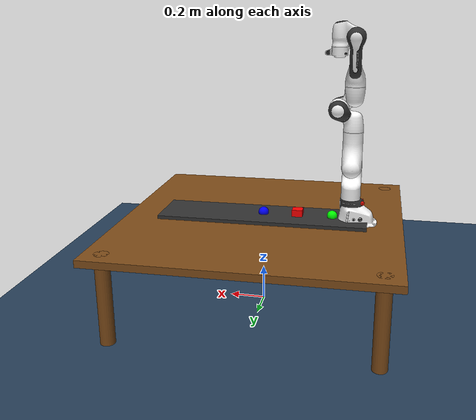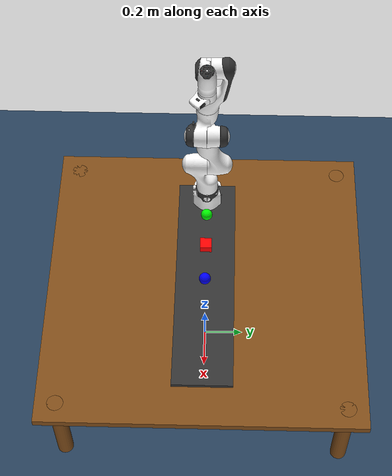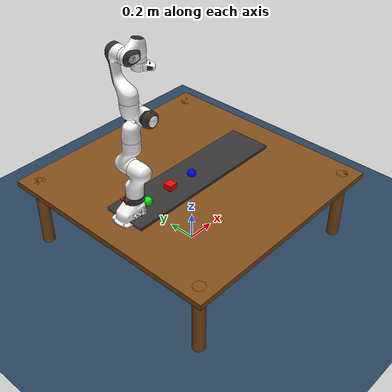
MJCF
<mujoco model="fr3 scene">
  <include file="fr3.xml"/>

  <statistic center="0.2 0 0.4" extent=".8"/>

  <visual>
    <headlight diffuse="0.6 0.6 0.6" ambient="0.3 0.3 0.3" specular="0 0 0"/>
    <rgba haze="0.15 0.25 0.35 1"/>
    <global azimuth="120" elevation="-20"/>
  </visual>

  <asset>
    <texture type="skybox" builtin="gradient" rgb1="0.3 0.5 0.7" rgb2="0 0 0" width="512" height="3072"/>
    <texture type="2d" name="groundplane" builtin="checker" mark="edge" rgb1="0.2 0.3 0.4" rgb2="0.1 0.2 0.3"
      markrgb="0.8 0.8 0.8" width="300" height="300"/>
    <material name="groundplane" texture="groundplane" texuniform="true" texrepeat="5 5" reflectance="0.2"/>
    <material name="table_mat" rgba="0.5 0.3 0.1 1"/>
    <material name="conveyor_mat" rgba="0.2 0.2 0.2 1"/>
    <material name="circle_mat" rgba="0 1 0 1"/>
    <material name="x_mat" rgba="1 0 0 1"/>
    <material name="triangle_mat" rgba="0 0 1 1"/>
  </asset>

  <worldbody>
    <light pos="0 0 1.5" dir="0 0 -1" directional="true"/>
    <geom name="floor" size="0 0 0.05" type="plane" material="groundplane"/>

    <!-- Table -->
    <body name="table" pos="0 0 0">
      <geom name="table_top" type="box" size="0.8 0.8 0.02" pos="0 0 0.50" material="table_mat"/>
      <!-- Optional table legs -->
      <geom name="leg1" type="cylinder" size="0.04 0.25" pos="0.7 0.7 0.27" material="table_mat"/>
      <geom name="leg2" type="cylinder" size="0.04 0.25" pos="-0.7 0.7 0.27" material="table_mat"/>
      <geom name="leg3" type="cylinder" size="0.04 0.25" pos="0.7 -0.7 0.27" material="table_mat"/>
      <geom name="leg4" type="cylinder" size="0.04 0.25" pos="-0.7 -0.7 0.27" material="table_mat"/>

      <!-- Conveyor belt - aligned with table -->
      <body name="conveyor" pos="0 0 0.52">  <!-- Just above table surface -->
        <geom name="belt" type="box" size="0.6 0.15 0.02" material="conveyor_mat"/>
        <joint name="conveyor_joint" type="slide" axis="1 0 0" pos="0 0 0" limited="false"/>

        <!-- Moving blocks - on conveyor surface -->
        <body name="circle_block" pos="-0.4 0 0.03">
          <joint name="circle_joint" type="slide" axis="1 0 0" limited="false"/>
          <geom name="circle_geom" type="sphere" size="0.03" material="circle_mat"/>
        </body>

        <body name="x_block" pos="-0.2 0 0.03">
          <joint name="x_joint" type="slide" axis="1 0 0" limited="false"/>
          <geom name="x_geom" type="box" size="0.03 0.03 0.03" material="x_mat"/>
        </body>

        <body name="triangle_block" pos="0 0 0.03">
          <joint name="triangle_joint" type="slide" axis="1 0 0" limited="false"/>
          <geom name="triangle_geom" type="ellipsoid" size="0.03 0.03 0.03" material="triangle_mat"/>
        </body>
      </body>
    </body>
  </worldbody>

  <actuator>
    <velocity name="conveyor_velocity" joint="conveyor_joint" kv="100" gear="1"/>
  </actuator>
</mujoco>

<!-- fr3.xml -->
<mujoco model="fr3">
  <compiler angle="radian" meshdir="assets"/>

  <option integrator="implicitfast"/>

  <default>
    <default class="fr3">
      <joint armature="0.1" damping="1"/>
      <position inheritrange="1"/>
      <default class="visual">
        <geom type="mesh" group="2" contype="0" conaffinity="0"/>
      </default>
      <default class="collision">
        <geom type="mesh" group="3" mass="0" density="0"/>
      </default>
      <site size="0.001" rgba="0.5 0.5 0.5 0.3" group="4"/>
    </default>
  </default>

  <asset>
    <material name="black" rgba=".2 .2 .2 1"/>
    <material name="white" rgba="1 1 1 1"/>
    <material name="red" rgba="1 0.072272 0.039546 1"/>
    <material name="gray" rgba="0.863156 0.863156 0.863157 1"/>
    <material name="button_green" rgba="0.102241 0.571125 0.102242 1"/>
    <material name="button_red" rgba="0.520996 0.008023 0.013702 1"/>
    <material name="button_blue" rgba="0.024157 0.445201 0.737911 1"/>

    <mesh file="link0_0.obj"/>
    <mesh file="link0_1.obj"/>
    <mesh file="link0_2.obj"/>
    <mesh file="link0_3.obj"/>
    <mesh file="link0_4.obj"/>
    <mesh file="link0_5.obj"/>
    <mesh file="link0_6.obj"/>
    <mesh file="link1.obj"/>
    <mesh file="link2.obj"/>
    <mesh file="link3_0.obj"/>
    <mesh file="link3_1.obj"/>
    <mesh file="link4_0.obj"/>
    <mesh file="link4_1.obj"/>
    <mesh file="link5_0.obj"/>
    <mesh file="link5_1.obj"/>
    <mesh file="link5_2.obj"/>
    <mesh file="link6_0.obj"/>
    <mesh file="link6_1.obj"/>
    <mesh file="link6_2.obj"/>
    <mesh file="link6_3.obj"/>
    <mesh file="link6_4.obj"/>
    <mesh file="link6_5.obj"/>
    <mesh file="link6_6.obj"/>
    <mesh file="link6_7.obj"/>
    <mesh file="link7_0.obj"/>
    <mesh file="link7_1.obj"/>
    <mesh file="link7_2.obj"/>
    <mesh file="link7_3.obj"/>

    <mesh name="link0_coll" file="link0.stl"/>
    <mesh name="link1_coll" file="link1.stl"/>
    <mesh name="link2_coll" file="link2.stl"/>
    <mesh name="link3_coll" file="link3.stl"/>
    <mesh name="link4_coll" file="link4.stl"/>
    <mesh name="link5_coll" file="link5.stl"/>
    <mesh name="link6_coll" file="link6.stl"/>
    <mesh name="link7_coll" file="link7.stl"/>
  </asset>

  <!-- NOTE the added pos attribute so the arm is raised to table height -->
  <worldbody>
    <body name="base" childclass="fr3" pos="-0.5 0 0.52">
      <body name="fr3_link0">
        <geom mesh="link0_0" material="black" class="visual"/>
        <geom mesh="link0_1" material="white" class="visual"/>
        <geom mesh="link0_2" material="white" class="visual"/>
        <geom mesh="link0_3" material="white" class="visual"/>
        <geom mesh="link0_4" material="white" class="visual"/>
        <geom mesh="link0_5" material="red" class="visual"/>
        <geom mesh="link0_6" material="black" class="visual"/>
        <geom name="fr3_link0_collision" mesh="link0_coll" class="collision"/>
        <body name="fr3_link1" pos="0 0 0.333">
          <inertial pos="4.128e-07 -0.0181251 -0.0386036" quat="0.998098 -0.0605364 0.00380499 0.0110109" mass="2.92747"
            diaginertia="0.0239286 0.0227246 0.00610634"/>
          <joint name="fr3_joint1" axis="0 0 1" range="-2.7437 2.7437" actuatorfrcrange="-87 87"/>
          <geom name="fr3_link1_collision" class="collision" mesh="link1_coll"/>
          <geom material="white" mesh="link1" class="visual"/>
          <body name="fr3_link2" quat="1 -1 0 0">
            <inertial pos="0.00318289 -0.0743222 0.00881461" quat="0.502599 0.584437 -0.465998 0.434366" mass="2.93554"
              diaginertia="0.0629567 0.0411924 0.0246371"/>
            <joint name="fr3_joint2" axis="0 0 1" range="-1.7837 1.7837" actuatorfrcrange="-87 87"/>
            <geom material="white" mesh="link2" class="visual"/>
            <geom name="fr3_link2_collision" class="collision" mesh="link2_coll"/>
            <body name="fr3_link3" pos="0 -0.316 0" quat="1 1 0 0">
              <inertial pos="0.0407016 -0.00482006 -0.0289731" quat="0.921025 -0.244161 0.155272 0.260745" mass="2.2449"
                diaginertia="0.0267409 0.0189869 0.0171587"/>
              <joint name="fr3_joint3" axis="0 0 1" range="-2.9007 2.9007" actuatorfrcrange="-87 87"/>
              <geom mesh="link3_0" material="white" class="visual"/>
              <geom mesh="link3_1" material="black" class="visual"/>
              <geom name="fr3_link3_collision" class="collision" mesh="link3_coll"/>
              <body name="fr3_link4" pos="0.0825 0 0" quat="1 1 0 0">
                <inertial pos="-0.0459101 0.0630493 -0.00851879" quat="0.438018 0.803311 0.00937812 0.403414"
                  mass="2.6156" diaginertia="0.05139 0.0372717 0.0160047"/>
                <joint name="fr3_joint4" axis="0 0 1" range="-3.0421 -0.1518" actuatorfrcrange="-87 87"/>
                <geom mesh="link4_0" material="white" class="visual"/>
                <geom mesh="link4_1" material="black" class="visual"/>
                <geom name="fr3_link4_collision" class="collision" mesh="link4_coll"/>
                <body name="fr3_link5" pos="-0.0825 0.384 0" quat="1 -1 0 0">
                  <inertial pos="-0.00160396 0.0292536 -0.0972966" quat="0.919031 0.125604 0.0751531 -0.366003"
                    mass="2.32712" diaginertia="0.0579335 0.0449144 0.0130634"/>
                  <joint name="fr3_joint5" axis="0 0 1" range="-2.8065 2.8065" actuatorfrcrange="-12 12"/>
                  <geom mesh="link5_0" material="white" class="visual"/>
                  <geom mesh="link5_1" material="white" class="visual"/>
                  <geom mesh="link5_2" material="black" class="visual"/>
                  <geom name="fr3_link5_collision" class="collision" mesh="link5_coll"/>
                  <body name="fr3_link6" quat="1 1 0 0">
                    <inertial pos="0.0597131 -0.0410295 -0.0101693" quat="0.621301 0.552665 0.510011 0.220081"
                      mass="1.81704" diaginertia="0.0175039 0.0161123 0.00193529"/>
                    <joint name="fr3_joint6" axis="0 0 1" range="0.5445 4.5169" actuatorfrcrange="-12 12"/>
                    <geom mesh="link6_0" material="button_green" class="visual"/>
                    <geom mesh="link6_1" material="white" class="visual"/>
                    <geom mesh="link6_2" material="white" class="visual"/>
                    <geom mesh="link6_3" material="gray" class="visual"/>
                    <geom mesh="link6_4" material="button_red" class="visual"/>
                    <geom mesh="link6_5" material="white" class="visual"/>
                    <geom mesh="link6_6" material="black" class="visual"/>
                    <geom mesh="link6_7" material="button_blue" class="visual"/>
                    <geom name="fr3_link6_collision" class="collision" mesh="link6_coll"/>
                    <body name="fr3_link7" pos="0.088 0 0" quat="1 1 0 0">
                      <inertial pos="0.00452258 0.00862619 -0.0161633" quat="0.727579 0.0978688 -0.24906 0.63168"
                        mass="0.627143" diaginertia="0.000223836 0.000223642 5.64132e-07"/>
                      <joint name="fr3_joint7" axis="0 0 1" range="-3.0159 3.0159" actuatorfrcrange="-12 12"/>
                      <geom mesh="link7_0" material="black" class="visual"/>
                      <geom mesh="link7_1" material="white" class="visual"/>
                      <geom mesh="link7_2" material="white" class="visual"/>
                      <geom mesh="link7_3" material="black" class="visual"/>
                      <geom name="fr3_link7_collision" class="collision" mesh="link7_coll"/>
                      <site name="attachment_site" pos="0 0 0.107"/>
                    </body>
                  </body>
                </body>
              </body>
            </body>
          </body>
        </body>
      </body>
    </body>
  </worldbody>

  <actuator>
    <position class="fr3" name="fr3_joint1" joint="fr3_joint1" kp="4500" kv="450"/>
    <position class="fr3" name="fr3_joint2" joint="fr3_joint2" kp="4500" kv="450"/>
    <position class="fr3" name="fr3_joint3" joint="fr3_joint3" kp="3500" kv="350"/>
    <position class="fr3" name="fr3_joint4" joint="fr3_joint4" kp="3500" kv="350"/>
    <position class="fr3" name="fr3_joint5" joint="fr3_joint5" kp="2000" kv="200"/>
    <position class="fr3" name="fr3_joint6" joint="fr3_joint6" kp="2000" kv="200"/>
    <position class="fr3" name="fr3_joint7" joint="fr3_joint7" kp="2000" kv="200"/>
  </actuator>

  <!-- Remove or comment out the entire keyframe section -->
</mujoco>

<mujoco model="fr3_scene">
  <include file="fr3.xml"/>

  <visual>
    <headlight diffuse="1.5 1.5 1.5" ambient="1.2 1.2 1.2" specular="0.7 0.7 0.7"/>
    <rgba haze="0.1 0.2 0.3 0.3" fogstart="3" fogend="10"/>
    <global azimuth="100" elevation="20"/>
  </visual>

  <asset>
    <texture type="skybox" builtin="" rgb1="0.6 0.8 1.0" rgb2="0.6 0.8 1.0" width="512" height="3072"/>
    <texture type="2d" name="groundplane" builtin="checker" mark="edge"
      rgb1="0.97 0.97 0.97" rgb2="0.8 0.8 0.8" markrgb="1 1 1" width="300" height="300"/>
    <material name="groundplane" texture="groundplane" texuniform="true" texrepeat="5 5" reflectance="0.7"/>
  </asset>

  <worldbody>
    <camera name="debug_cam" mode="trackcom" target="base" pos="0 -2 1.5"/>

    <light pos="0 0 4" dir="0 0 -1" diffuse="1.5 1.5 1.5" ambient="1.2 1.2 1.2" directional="false"/>
    <light pos="3 3 4" dir="-1 -1 -1" diffuse="1.2 1.2 1.2" ambient="1.0 1.0 1.0" directional="false"/>

    <geom name="floor" type="plane" size="5 5 0.05" material="groundplane" rgba="1 1 1 1"/>

    <body name="table" pos="0 0 0">
      <geom name="table_top" type="box" pos="0 0 0.75" size="1.0 1.0 0.05" rgba="1 1 1 1"/>
    </body>

    <body name="base" pos="0 0 1.0">
      <geom type="sphere" size="0.1" rgba="0 0 1 1"/>
      <body name="arm_segment" pos="0 0 0.2">
        <geom type="capsule" fromto="0 0 0 0 0 0.5" size="0.05" rgba="0 1 0 1"/>
        <body name="gripper" pos="0 0 0.55">
          <geom type="sphere" size="0.05" rgba="0.8 0.8 0.1 1"/>
        </body>
      </body>
    </body>

    <body name="circle_block" pos="-0.5 0 0.85">
      <geom name="circle_geom" type="sphere" size="0.05" rgba="0 1 0 1"/>
    </body>
    <body name="x_block" pos="0.5 0 0.85">
      <geom name="x_geom" type="box" size="0.05 0.05 0.05" rgba="1 0 0 1"/>
    </body>
    <body name="triangle_block" pos="0 0.5 0.85">
      <geom name="triangle_geom" type="ellipsoid" size="0.05 0.05 0.05" rgba="0 0 1 1"/>
    </body>
  </worldbody>
</mujoco>
